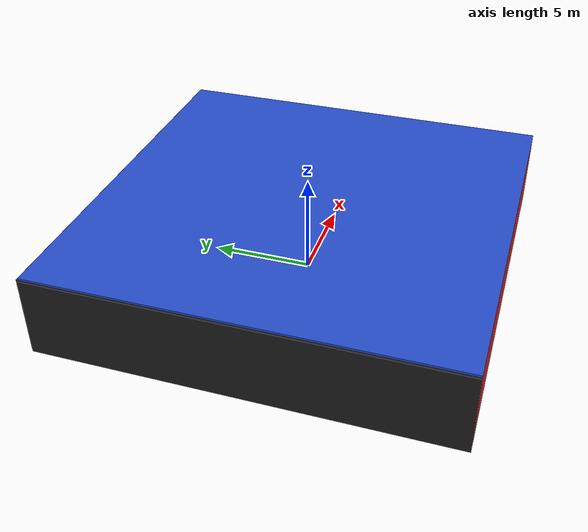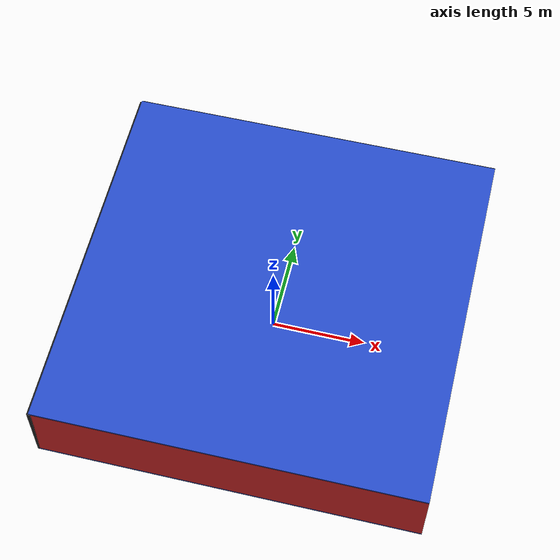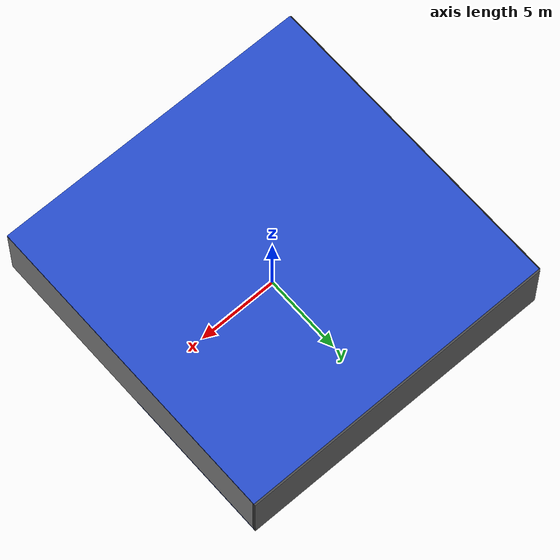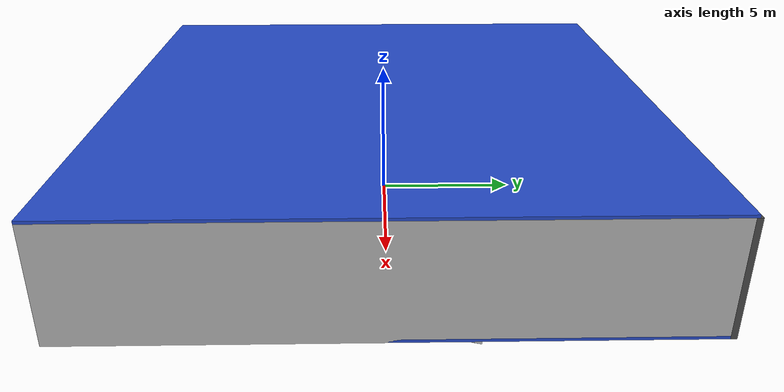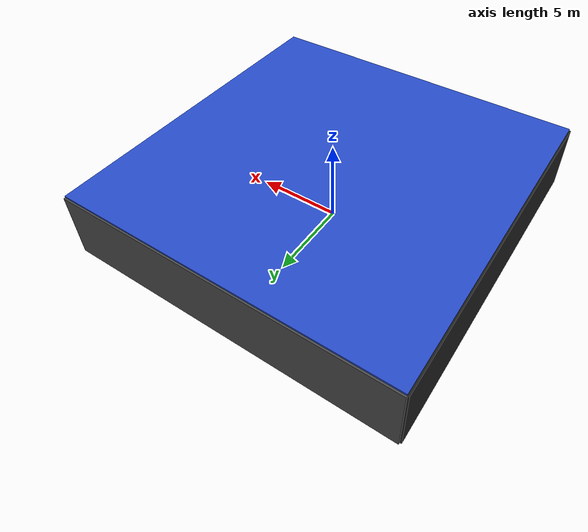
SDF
<sdf version="1.4">
 <world name="default">
  <physics type="ode">
   <max_step_size>0.001</max_step_size>
   <real_time_factor>1</real_time_factor>
   <real_time_update_rate>1000</real_time_update_rate>
   <gravity>0 0 -9.8</gravity>
  </physics>
  <scene><ambient>0.4 0.4 0.4 1</ambient><background>0.7 0.7 0.7 1</background><shadows>1</shadows></scene>
  <model name="Surrounding">
   <static>1</static>
   <link name="Ceiling">
    <collision name="Ceiling_Collision"><geometry><box><size>20 20 0.1</size></box></geometry></collision>
    <visual name="Ceiling_Visual">
     <geometry><box><size>20 20 0.1</size></box></geometry>
     <material>
      <script><uri>file://media/materials/scripts/gazebo.material</uri><name>Gazebo/BlueGlow</name></script>
     </material>
    </visual>
    <pose>0 0 4.05 0 0 0</pose>
   </link>
   <link name="Wall_South">
    <collision name="Wall_South_Collision">
     <geometry><box><size>20 0 4</size></box></geometry>
     <pose>0 0 2 0 -0 0</pose>
    </collision>
    <visual name="Wall_South_Visual">
     <pose>0 0 2 0 -0 0</pose>
     <geometry><box><size>20 0 4</size></box></geometry>
     <material>
      <script><uri>file://media/materials/scripts/gazebo.material</uri><name>Gazebo/RedGlow</name></script>
     </material>
    </visual>
    <velocity_decay><linear>0</linear><angular>0</angular></velocity_decay>
    <pose>0 -10 0 0 -0 0</pose>
   </link>
   <link name="Wall_East">
    <collision name="Wall_21_Collision">
     <geometry><box><size>20 0 4</size></box></geometry>
     <pose>0 0 2 0 -0 0</pose>
    </collision>
    <visual name="Wall_21_Visual">
     <pose>0 0 2 0 -0 0</pose>
     <geometry><box><size>20 0 4</size></box></geometry>
     <material>
      <script><uri>file://media/materials/scripts/gazebo.material</uri><name>Gazebo/Pioneer2Body</name></script>
     </material>
    </visual>
    <velocity_decay><linear>0</linear><angular>0</angular></velocity_decay>
    <pose>10 0 0 0 -0 1.5708</pose>
   </link>
   <link name="Wall_North">
    <collision name="Wall_22_Collision">
     <geometry><box><size>20 0.2 4</size></box></geometry>
     <pose>0 0 2 0 -0 0</pose>
    </collision>
    <visual name="Wall_22_Visual">
     <pose>0 0 2 0 -0 0</pose>
     <geometry><box><size>20 0.2 4</size></box></geometry>
     <material>
      <script><uri>file://media/materials/scripts/gazebo.material</uri><name>Gazebo/Road</name></script>
     </material>
    </visual>
    <velocity_decay><linear>0</linear><angular>0</angular></velocity_decay>
    <pose>0 10 0 0 -0 0</pose>
   </link>
   <link name="Wall_West">
    <collision name="Wall_23_Collision">
     <geometry><box><size>20 0.2 4</size></box></geometry>
     <pose>0 0 2 0 -0 0</pose>
    </collision>
    <visual name="Wall_23_Visual">
     <pose>0 0 2 0 -0 0</pose>
     <geometry><box><size>20 0.2 4</size></box></geometry>
     <material>
      <script><uri>file://media/materials/scripts/gazebo.material</uri><name>Gazebo/FlatBlack</name></script>
     </material>
    </visual>
    <velocity_decay><linear>0</linear><angular>0</angular></velocity_decay>
    <pose>-10 0 0 0 0 -1.5708</pose>
   </link>
   <link name="Ground_link">
    <collision name="collision">
     <pose>0 0 .05 0 -0 0</pose>
     <geometry><box><size>20 20 0.1</size></box></geometry>
    </collision>
    <visual name="visual">
     <pose>0 0 .05 0 -0 0</pose>
     <geometry><box><size>20 20 0.1</size></box></geometry>
     <material>
      <script><uri>file://media/materials/scripts/gazebo.material</uri><name>Gazebo/BlueLaser</name></script>
     </material>
    </visual>
   </link>
   <static>1</static>
  </model>
  <spherical_coordinates>
   <surface_model>EARTH_WGS84</surface_model>
   <latitude_deg>0</latitude_deg>
   <longitude_deg>0</longitude_deg>
   <elevation>0</elevation>
   <heading_deg>0</heading_deg>
  </spherical_coordinates>
  <light name="lightball_0" type="diffuse">
   <diffuse>0.8 0.8 0.8 1</diffuse>
   <specular>0.2 0.2 0.2 1</specular>
   <attenuation>
    <range>100</range>
    <constant>0.7</constant>
    <linear>0.01</linear>
    <quadratic>0.001</quadratic>
   </attenuation>
   <direction>-0.5 0.1 -0.9</direction>
   <pose>-9.19810286489 4.99939300704 2.68007033076 0 0 0</pose>
  </light>
  <light name="lightball_1" type="diffuse">
   <diffuse>0.8 0.8 0.8 1</diffuse>
   <specular>0.2 0.2 0.2 1</specular>
   <attenuation>
    <range>100</range>
    <constant>0.7</constant>
    <linear>0.01</linear>
    <quadratic>0.001</quadratic>
   </attenuation>
   <direction>-0.5 0.1 -0.9</direction>
   <pose>4.72786019355 -3.73971051503 0.847670026402 0 0 0</pose>
  </light>
  <light name="lightball_2" type="diffuse">
   <diffuse>0.8 0.8 0.8 1</diffuse>
   <specular>0.2 0.2 0.2 1</specular>
   <attenuation>
    <range>100</range>
    <constant>0.7</constant>
    <linear>0.01</linear>
    <quadratic>0.001</quadratic>
   </attenuation>
   <direction>-0.5 0.1 -0.9</direction>
   <pose>-8.06902549568 -9.69297838865 2.35526575494 0 0 0</pose>
  </light>
  <light name="lightball_3" type="diffuse">
   <diffuse>0.8 0.8 0.8 1</diffuse>
   <specular>0.2 0.2 0.2 1</specular>
   <attenuation>
    <range>100</range>
    <constant>0.7</constant>
    <linear>0.01</linear>
    <quadratic>0.001</quadratic>
   </attenuation>
   <direction>-0.5 0.1 -0.9</direction>
   <pose>7.68438530614 5.00322024188 2.44063938287 0 0 0</pose>
  </light>
  <light name="lightball_4" type="diffuse">
   <diffuse>0.8 0.8 0.8 1</diffuse>
   <specular>0.2 0.2 0.2 1</specular>
   <attenuation>
    <range>100</range>
    <constant>0.7</constant>
    <linear>0.01</linear>
    <quadratic>0.001</quadratic>
   </attenuation>
   <direction>-0.5 0.1 -0.9</direction>
   <pose>0.840083686735 3.38259200104 3.20220309122 0 0 0</pose>
  </light>
  <light name="lightball_5" type="diffuse">
   <diffuse>0.8 0.8 0.8 1</diffuse>
   <specular>0.2 0.2 0.2 1</specular>
   <attenuation>
    <range>100</range>
    <constant>0.7</constant>
    <linear>0.01</linear>
    <quadratic>0.001</quadratic>
   </attenuation>
   <direction>-0.5 0.1 -0.9</direction>
   <pose>-7.47026301601 -1.98353739703 2.75064614568 0 0 0</pose>
  </light>
  <light name="lightball_6" type="diffuse">
   <diffuse>0.8 0.8 0.8 1</diffuse>
   <specular>0.2 0.2 0.2 1</specular>
   <attenuation>
    <range>100</range>
    <constant>0.7</constant>
    <linear>0.01</linear>
    <quadratic>0.001</quadratic>
   </attenuation>
   <direction>-0.5 0.1 -0.9</direction>
   <pose>-4.24763744163 9.63165238496 1.52258103317 0 0 0</pose>
  </light>
  <light name="lightball_7" type="diffuse">
   <diffuse>0.8 0.8 0.8 1</diffuse>
   <specular>0.2 0.2 0.2 1</specular>
   <attenuation>
    <range>100</range>
    <constant>0.7</constant>
    <linear>0.01</linear>
    <quadratic>0.001</quadratic>
   </attenuation>
   <direction>-0.5 0.1 -0.9</direction>
   <pose>6.54277208893 5.00097270621 3.06971406302 0 0 0</pose>
  </light>
  <light name="lightball_8" type="diffuse">
   <diffuse>0.8 0.8 0.8 1</diffuse>
   <specular>0.2 0.2 0.2 1</specular>
   <attenuation>
    <range>100</range>
    <constant>0.7</constant>
    <linear>0.01</linear>
    <quadratic>0.001</quadratic>
   </attenuation>
   <direction>-0.5 0.1 -0.9</direction>
   <pose>2.84279100394 -6.96055382038 1.55650900295 0 0 0</pose>
  </light>
  <light name="lightball_9" type="diffuse">
   <diffuse>0.8 0.8 0.8 1</diffuse>
   <specular>0.2 0.2 0.2 1</specular>
   <attenuation>
    <range>100</range>
    <constant>0.7</constant>
    <linear>0.01</linear>
    <quadratic>0.001</quadratic>
   </attenuation>
   <direction>-0.5 0.1 -0.9</direction>
   <pose>1.33994139118 -0.0676116820463 1.79112910657 0 0 0</pose>
  </light>
  <include>
   <uri>model://robocup_3Dsim_goal</uri>
   <pose>-8.41919808368 7.09273552432 0 0 0 1.19618609134</pose>
  </include>
  <include>
   <uri>model://construction_cone</uri>
   <pose>-0.861703543008 -3.4131810683 0 0 0 3.11734078338</pose>
  </include>
  <include><uri>model://cabinet</uri><pose>-1.50860460933 5.15522232598 0 0 0 1.33696920603</pose></include>
  <include><uri>model://table</uri><pose>1.43820231303 -4.92729379754 0 0 0 2.15140097597</pose></include>
  <include>
   <uri>model://textured_shapes</uri>
   <pose>0.749272752772 7.87786354662 0 0 0 2.5246239171</pose>
  </include>
  <include>
   <uri>model://textured_shapes</uri>
   <pose>8.43828524929 0.991741151524 0 0 0 2.85845481223</pose>
  </include>
 </world>
</sdf>

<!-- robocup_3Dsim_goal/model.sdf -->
<sdf version="1.5">
  <model name="robocup_3d_goal">
    <static>true</static>
    <link name="left_post">
      <pose>0 1.05 0.45 0 0 0</pose>
      <collision name="collision">
        <geometry>
          <cylinder>
            <radius>0.05</radius>
            <length>0.9</length>
          </cylinder>
        </geometry>
      </collision>
      <visual name="visual">
        <geometry>
          <cylinder>
            <radius>0.05</radius>
            <length>0.9</length>
          </cylinder>
        </geometry>
        <material>
          <script>
            <uri>file://media/materials/scripts/gazebo.material</uri>
            <name>Gazebo/ZincYellow</name>
          </script>
        </material>
      </visual>
    </link>
    <link name="left_support_horiz_lower">
      <pose>0.30 1.05 0.01 0 0 0</pose>
      <collision name="collision">
        <geometry>
          <box>
            <size>0.50 0.02 0.02</size>
          </box>
        </geometry>
      </collision>
      <visual name="visual">
        <geometry>
          <box>
            <size>0.50 0.02 0.02</size>
          </box>
        </geometry>
        <material>
          <script>
            <uri>file://media/materials/scripts/gazebo.material</uri>
            <name>Gazebo/White</name>
          </script>
        </material>
      </visual>
    </link>
    <link name="left_support_horiz_upper">
      <pose>0.30 1.05 0.79 0 0 0</pose>
      <collision name="collision">
        <geometry>
          <box>
            <size>0.50 0.02 0.02</size>
          </box>
        </geometry>
      </collision>
      <visual name="visual">
        <geometry>
          <box>
            <size>0.50 0.02 0.02</size>
          </box>
        </geometry>
        <material>
          <script>
            <uri>file://media/materials/scripts/gazebo.material</uri>
            <name>Gazebo/White</name>
          </script>
        </material>
      </visual>
    </link>
    <link name="left_support_vertical">
      <pose>0.56 1.05 0.4 0 1.5708 0</pose>
      <collision name="collision">
        <geometry>
          <box>
            <size>0.80 0.02 0.02</size>
          </box>
        </geometry>
      </collision>
      <visual name="visual">
        <geometry>
          <box>
            <size>0.80 0.02 0.02</size>
          </box>
        </geometry>
        <material>
          <script>
            <uri>file://media/materials/scripts/gazebo.material</uri>
            <name>Gazebo/White</name>
          </script>
        </material>
      </visual>
    </link>
    <link name="right_support_horiz_lower">
      <pose>0.30 -1.05 0.01 0 0 0</pose>
      <collision name="collision">
        <geometry>
          <box>
            <size>0.50 0.02 0.02</size>
          </box>
        </geometry>
      </collision>
      <visual name="visual">
        <geometry>
          <box>
            <size>0.50 0.02 0.02</size>
          </box>
        </geometry>
        <material>
          <script>
            <uri>file://media/materials/scripts/gazebo.material</uri>
            <name>Gazebo/White</name>
          </script>
        </material>
      </visual>
    </link>
    <link name="right_support_horiz_upper">
      <pose>0.30 -1.05 0.79 0 0 0</pose>
      <collision name="collision">
        <geometry>
          <box>
            <size>0.50 0.02 0.02</size>
          </box>
        </geometry>
      </collision>
      <visual name="visual">
        <geometry>
          <box>
            <size>0.50 0.02 0.02</size>
          </box>
        </geometry>
        <material>
          <script>
            <uri>file://media/materials/scripts/gazebo.material</uri>
            <name>Gazebo/White</name>
          </script>
        </material>
      </visual>
    </link>
    <link name="right_support_vertical">
      <pose>0.56 -1.05 0.4 0 1.5708 0</pose>
      <collision name="collision">
        <geometry>
          <box>
            <size>0.80 0.02 0.02</size>
          </box>
        </geometry>
      </collision>
      <visual name="visual">
        <geometry>
          <box>
            <size>0.80 0.02 0.02</size>
          </box>
        </geometry>
        <material>
          <script>
            <uri>file://media/materials/scripts/gazebo.material</uri>
            <name>Gazebo/White</name>
          </script>
        </material>
      </visual>
    </link>
    <link name="center_support_horiz_lower">
      <pose>0.56 0 0.01 0 1.5708 0</pose>
      <collision name="collision">
        <geometry>
          <box>
            <size>0.02 2.08 0.02</size>
          </box>
        </geometry>
      </collision>
      <visual name="visual">
        <geometry>
          <box>
            <size>0.02 2.08 0.02</size>
          </box>
        </geometry>
        <material>
          <script>
            <uri>file://media/materials/scripts/gazebo.material</uri>
            <name>Gazebo/White</name>
          </script>
        </material>
      </visual>
    </link>
    <link name="center_support_horiz_upper">
      <pose>0.56 0 0.79 0 1.5708 0</pose>
      <collision name="collision">
        <geometry>
          <box>
            <size>0.02 2.08 0.02</size>
          </box>
        </geometry>
      </collision>
      <visual name="visual">
        <geometry>
          <box>
            <size>0.02 2.08 0.02</size>
          </box>
        </geometry>
        <material>
          <script>
            <uri>file://media/materials/scripts/gazebo.material</uri>
            <name>Gazebo/White</name>
          </script>
        </material>
      </visual>
    </link>
    <link name="right_post">
      <pose>0 -1.05 0.45 0 0 0</pose>
      <collision name="collision">
        <geometry>
          <cylinder>
            <radius>0.05</radius>
            <length>0.9</length>
          </cylinder>
        </geometry>
      </collision>
      <visual name="visual">
        <geometry>
          <cylinder>
            <radius>0.05</radius>
            <length>0.9</length>
          </cylinder>
        </geometry>
        <material>
          <script>
            <uri>file://media/materials/scripts/gazebo.material</uri>
            <name>Gazebo/ZincYellow</name>
          </script>
        </material>
      </visual>
    </link>
    <link name="crossbar">
      <pose>0 0 0.85 1.57 1.57 0</pose>
      <collision name="collision">
        <geometry>
          <cylinder>
            <radius>0.05</radius>
            <length>2.0</length>
          </cylinder>
        </geometry>
      </collision>
      <visual name="visual">
        <geometry>
          <cylinder>
            <radius>0.05</radius>
            <length>2.0</length>
          </cylinder>
        </geometry>
        <material>
          <script>
            <uri>file://media/materials/scripts/gazebo.material</uri>
            <name>Gazebo/ZincYellow</name>
          </script>
        </material>
      </visual>
    </link>
    <link name="center_net">
      <pose>0.56 0 0.40 0 0 0</pose>
      <collision name="collision">
        <geometry>
          <box>
            <size>0.01 2.1 0.80</size>
          </box>
        </geometry>
      </collision>
      <visual name="visual">
        <geometry>
          <box>
            <size>0.01 2.1 0.80</size>
          </box>
        </geometry>
        <material>
          <script>
            <uri>model://../model_source/models/robocup09_spl_field/materials/scripts/</uri>
            <uri>model://../model_source/models/robocup09_spl_field/materials/textures/</uri>
            <name>RoboCup/Net</name>
          </script>
        </material>
      </visual>
    </link>
    <link name="left_net">
      <pose>0.30 1.05 0.40 0 0 0</pose>
      <collision name="collision">
        <geometry>
          <box>
            <size>0.50 0.01 0.76</size>
          </box>
        </geometry>
      </collision>
      <visual name="visual">
        <geometry>
          <box>
            <size>0.50 0.01 0.76</size>
          </box>
        </geometry>
        <material>
          <script>
            <uri>model://../model_source/models/robocup09_spl_field/materials/scripts/</uri>
            <uri>model://../model_source/models/robocup09_spl_field/materials/textures/</uri>
            <name>RoboCup/Net</name>
          </script>
        </material>
      </visual>
    </link>
    <link name="right_net">
      <pose>0.30 -1.05 0.40 0 0 0</pose>
      <collision name="collision">
        <geometry>
          <box>
            <size>0.50 0.01 0.76</size>
          </box>
        </geometry>
      </collision>
      <visual name="visual">
        <geometry>
          <box>
            <size>0.50 0.01 0.76</size>
          </box>
        </geometry>
        <material>
          <script>
            <uri>model://../model_source/models/robocup09_spl_field/materials/scripts/</uri>
            <uri>model://../model_source/models/robocup09_spl_field/materials/textures/</uri>
            <name>RoboCup/Net</name>
          </script>
        </material>
      </visual>
    </link>
  </model>
</sdf>

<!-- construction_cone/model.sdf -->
<sdf version="1.5">
  <model name="Construction Cone">
    <link name="link">
      <collision name="collision">
        <geometry>
          <mesh>
            <scale>10 10 10</scale>
            <uri>file://isr-testbed/construction_cone/meshes/construction_cone.dae</uri>
          </mesh>
        </geometry>
      </collision>
      <visual name="visual">
        <geometry>
          <mesh>
            <scale>10 10 10</scale>
            <uri>file://isr-testbed/construction_cone/meshes/construction_cone.dae</uri>
          </mesh>
        </geometry>
      </visual>
    </link>
  </model>
</sdf>

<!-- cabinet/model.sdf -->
<sdf version="1.5">
  <model name="cabinet">
    <static>true</static>
    <link name="cabinet_bottom_plate">
      <inertial>
        <pose>0 0 -1 0 0 0</pose>
        <inertia>
          <ixx>2.050000</ixx>
          <ixy>0</ixy>
          <ixz>0</ixz>
          <iyy>2.050000</iyy>
          <iyz>0</iyz>
          <izz>2.050000</izz>
        </inertia>
        <mass>25.000000</mass>
      </inertial>
      <collision name="cabinet_bottom_plate_geom">
        <pose>0 0 0.010000 0 0 0</pose>
        <geometry>
          <box>
            <size>0.450000 0.450000 0.020000</size>
          </box>
        </geometry>
      </collision>
      <visual name="cabinet_bottom_plate_geom_visual">
        <pose>0 0 0.010000 0 0 0</pose>
        <geometry>
          <box>
            <size>0.450000 0.450000 0.020000</size>
          </box>
        </geometry>
        <material>
          <script>
            <uri>model://media/materials/scripts/gazebo.material</uri>
            <name>Gazebo/Wood</name>
          </script>
        </material>
      </visual>
      <collision name="cabinet_bottom_plate_geom_cabinet_back_plate">
        <pose>0.235000 0 0.510000 0 0 0</pose>
        <geometry>
          <box>
            <size>0.020000 0.450000 1.020000</size>
          </box>
        </geometry>
      </collision>
      <visual name="cabinet_bottom_plate_geom_cabinet_back_plate_visual">
        <pose>0.235000 0 0.510000 0 0 0</pose>
        <geometry>
          <box>
            <size>0.020000 0.450000 1.020000</size>
          </box>
        </geometry>
        <material>
          <script>
            <uri>model://media/materials/scripts/gazebo.material</uri>
            <name>Gazebo/Wood</name>
          </script>
        </material>
      </visual>
      <collision name="cabinet_bottom_plate_geom_cabinet_left_plate">
        <pose>0 0.235000 0.510000 0 0 0</pose>
        <geometry>
          <box>
            <size>0.450000 0.020000 1.020000</size>
          </box>
        </geometry>
      </collision>
      <visual name="cabinet_bottom_plate_geom_cabinet_left_plate_visual">
        <pose>0 0.235000 0.510000 0 0 0</pose>
        <geometry>
          <box>
            <size>0.450000 0.020000 1.020000</size>
          </box>
        </geometry>
        <material>
          <script>
            <uri>model://media/materials/scripts/gazebo.material</uri>
            <name>Gazebo/Wood</name>
          </script>
        </material>
      </visual>
      <collision name="cabinet_bottom_plate_geom_cabinet_middle_plate">
        <pose>0 0 0.510000 0 0 0</pose>
        <geometry>
          <box>
            <size>0.450000 0.450000 0.020000</size>
          </box>
        </geometry>
      </collision>
      <visual name="cabinet_bottom_plate_geom_cabinet_middle_plate_visual">
        <pose>0 0 0.510000 0 0 0</pose>
        <geometry>
          <box>
            <size>0.450000 0.450000 0.020000</size>
          </box>
        </geometry>
        <material>
          <script>
            <uri>model://media/materials/scripts/gazebo.material</uri>
            <name>Gazebo/Wood</name>
          </script>
        </material>
      </visual>
      <collision name="cabinet_bottom_plate_geom_cabinet_right_plate">
        <pose>0 -0.235000 0.510000 0 0 0</pose>
        <geometry>
          <box>
            <size>0.450000 0.020000 1.020000</size>
          </box>
        </geometry>
      </collision>
      <visual name="cabinet_bottom_plate_geom_cabinet_right_plate_visual">
        <pose>0 -0.235000 0.510000 0 0 0</pose>
        <geometry>
          <box>
            <size>0.450000 0.020000 1.020000</size>
          </box>
        </geometry>
        <material>
          <script>
            <uri>model://media/materials/scripts/gazebo.material</uri>
            <name>Gazebo/Wood</name>
          </script>
        </material>
      </visual>
      <collision name="cabinet_bottom_plate_geom_cabinet_top_plate">
        <pose>0 0 1.010000 0 0 0</pose>
        <geometry>
          <box>
            <size>0.450000 0.450000 0.020000</size>
          </box>
        </geometry>
      </collision>
      <visual name="cabinet_bottom_plate_geom_cabinet_top_plate_visual">
        <pose>0 0 1.010000 0 0 0</pose>
        <geometry>
          <box>
            <size>0.450000 0.450000 0.020000</size>
          </box>
        </geometry>
        <material>
          <script>
            <uri>model://media/materials/scripts/gazebo.material</uri>
            <name>Gazebo/Wood</name>
          </script>
        </material>
      </visual>
    </link>
  </model>
</sdf>

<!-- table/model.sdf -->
<sdf version="1.5">
  <model name="table">
    <static>true</static>
    <link name="link">
      <collision name="surface">
        <pose>0 0 1.0 0 0 0</pose>
        <geometry>
          <box>
            <size>1.5 0.8 0.03</size>
          </box>
        </geometry>
        <surface>
          <friction>
            <ode>
              <mu>0.6</mu>
              <mu2>0.6</mu2>
            </ode>
          </friction>
        </surface>
      </collision>
      <visual name="visual1">
        <pose>0 0 1.0 0 0 0</pose>
        <geometry>
          <box>
            <size>1.5 0.8 0.03</size>
          </box>
        </geometry>
        <material>
          <script>
            <uri>model://media/materials/scripts/gazebo.material</uri>
            <name>Gazebo/Wood</name>
          </script>
        </material>
      </visual>
      <collision name="front_left_leg">
        <pose>0.68 0.38 0.5 0 0 0</pose>
        <geometry>
          <cylinder>
            <radius>0.02</radius>
            <length>1.0</length>
          </cylinder>
        </geometry>
      </collision>
      <visual name="front_left_leg">
        <pose>0.68 0.38 0.5 0 0 0</pose>
        <geometry>
          <cylinder>
            <radius>0.02</radius>
            <length>1.0</length>
          </cylinder>
        </geometry>
        <material>
          <script>
            <uri>model://media/materials/scripts/gazebo.material</uri>
            <name>Gazebo/Grey</name>
          </script>
        </material>
      </visual>
      <collision name="front_right_leg">
        <pose>0.68 -0.38 0.5 0 0 0</pose>
        <geometry>
          <cylinder>
            <radius>0.02</radius>
            <length>1.0</length>
          </cylinder>
        </geometry>
      </collision>
      <visual name="front_right_leg">
        <pose>0.68 -0.38 0.5 0 0 0</pose>
        <geometry>
          <cylinder>
            <radius>0.02</radius>
            <length>1.0</length>
          </cylinder>
        </geometry>
        <material>
          <script>
            <uri>model://media/materials/scripts/gazebo.material</uri>
            <name>Gazebo/Grey</name>
          </script>
        </material>
      </visual>
      <collision name="back_right_leg">
        <pose>-0.68 -0.38 0.5 0 0 0</pose>
        <geometry>
          <cylinder>
            <radius>0.02</radius>
            <length>1.0</length>
          </cylinder>
        </geometry>
      </collision>
      <visual name="back_right_leg">
        <pose>-0.68 -0.38 0.5 0 0 0</pose>
        <geometry>
          <cylinder>
            <radius>0.02</radius>
            <length>1.0</length>
          </cylinder>
        </geometry>
        <material>
          <script>
            <uri>model://media/materials/scripts/gazebo.material</uri>
            <name>Gazebo/Grey</name>
          </script>
        </material>
      </visual>
      <collision name="back_left_leg">
        <pose>-0.68 0.38 0.5 0 0 0</pose>
        <geometry>
          <cylinder>
            <radius>0.02</radius>
            <length>1.0</length>
          </cylinder>
        </geometry>
      </collision>
      <visual name="back_left_leg">
        <pose>-0.68 0.38 0.5 0 0 0</pose>
        <geometry>
          <cylinder>
            <radius>0.02</radius>
            <length>1.0</length>
          </cylinder>
        </geometry>
        <material>
          <script>
            <uri>model://media/materials/scripts/gazebo.material</uri>
            <name>Gazebo/Grey</name>
          </script>
        </material>
      </visual>
    </link>
  </model>
</sdf>

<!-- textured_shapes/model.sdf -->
<sdf version="1.6">
  <model name="textured_shapes">
    <pose>0 0 0.5 0 0 0</pose>
    <link name="box">
      <pose>0 -1.5 0 0 0 0</pose>
      <collision name="collision">
        <geometry>
          <box>
            <size>1 1 1</size>
          </box>
        </geometry>
      </collision>
      <visual name="visual">
        <geometry>
          <box>
            <size>1 1 1</size>
          </box>
        </geometry>
        <material>
          <script>
            <uri>model://../model_source/models/textured_shapes/materials/scripts</uri>
            <uri>model://../model_source/models/textured_shapes/materials/textures</uri>
            <name>TexturedShape/Squares</name>
          </script>
        </material>
      </visual>
    </link>
    <link name="sphere">
      <collision name="collision">
        <geometry>
          <sphere>
            <radius>0.5</radius>
          </sphere>
        </geometry>
      </collision>
      <visual name="visual">
        <geometry>
          <sphere>
            <radius>0.5</radius>
          </sphere>
        </geometry>
        <material>
          <script>
            <uri>model://../model_source/models/textured_shapes/materials/scripts</uri>
            <uri>model://../model_source/models/textured_shapes/materials/textures</uri>
            <name>TexturedShape/Squares</name>
          </script>
        </material>
      </visual>
    </link>
    <link name="cylinder">
      <pose>0 1.5 0 0 0 0</pose>
      <collision name="collision">
        <geometry>
          <cylinder>
            <radius>0.5</radius>
            <length>1</length>
          </cylinder>
        </geometry>
      </collision>
      <visual name="visual">
        <geometry>
          <cylinder>
            <radius>0.5</radius>
            <length>1</length>
          </cylinder>
        </geometry>
        <material>
          <script>
            <uri>model://../model_source/models/textured_shapes/materials/scripts</uri>
            <uri>model://../model_source/models/textured_shapes/materials/textures</uri>
            <name>TexturedShape/Squares</name>
          </script>
        </material>
      </visual>
    </link>
  </model>
</sdf>
